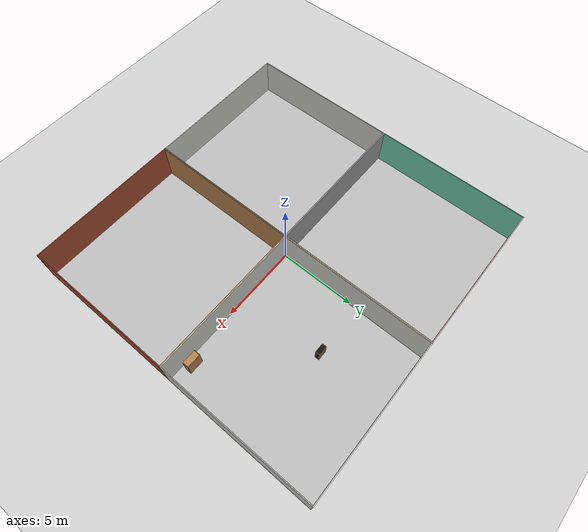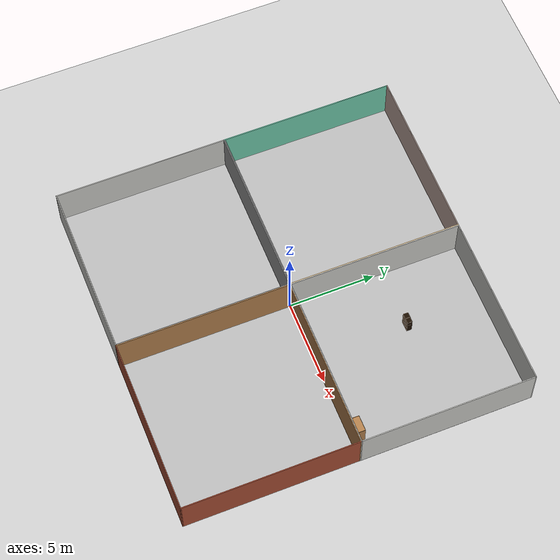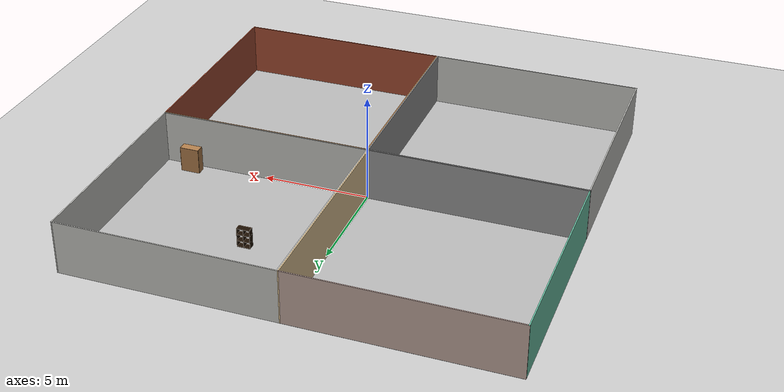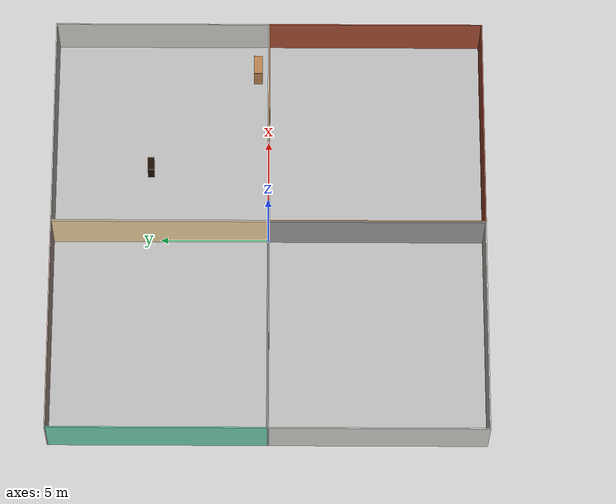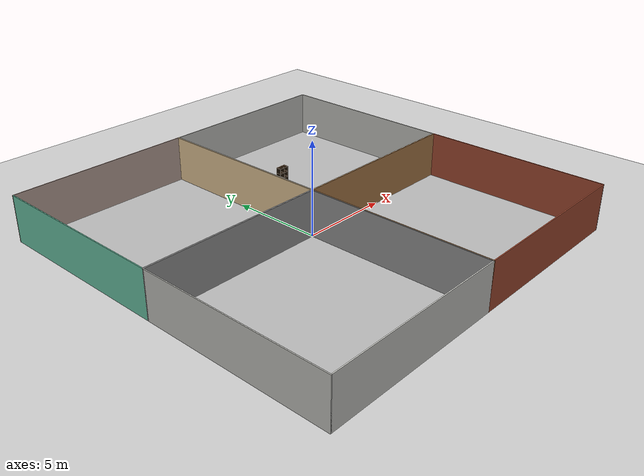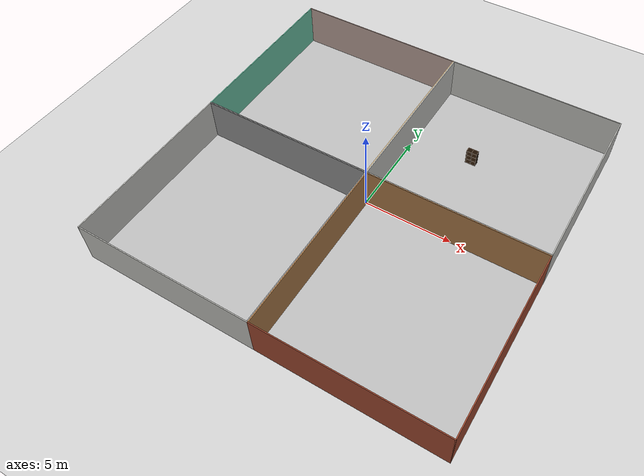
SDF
<sdf version="1.6">
 <world name="default">
  <light name="sun" type="directional">
   <pose>0 0 10 0 -0 0</pose>
   <diffuse>0.8 0.8 0.8 1</diffuse>
   <specular>0.1 0.1 0.1 1</specular>
   <attenuation>
    <range>1000</range>
    <constant>0.9</constant>
    <linear>0.01</linear>
    <quadratic>0.001</quadratic>
   </attenuation>
   <direction>-0.5 0.5 -1</direction>
  </light>
  <model name="ground_plane">
   <static>1</static>
   <link name="link">
    <collision name="collision">
     <geometry><plane><normal>0 0 1</normal><size>100 100</size></plane></geometry>
     <surface><friction><ode><mu>100</mu><mu2>50</mu2></ode></friction></surface>
    </collision>
    <visual name="visual">
     <cast_shadows>0</cast_shadows>
     <geometry><plane><normal>0 0 1</normal><size>100 100</size></plane></geometry>
     <material>
      <script><uri>file://media/materials/scripts/gazebo.material</uri><name>Gazebo/Grey</name></script>
     </material>
    </visual>
   </link>
  </model>
  <gravity>0 0 -9.8</gravity>
  <magnetic_field>6e-06 2.3e-05 -4.2e-05</magnetic_field>
  <atmosphere type="adiabatic"/>
  <physics name="default_physics" default="0" type="ode">
   <max_step_size>0.01</max_step_size>
   <real_time_factor>1</real_time_factor>
   <real_time_update_rate>100</real_time_update_rate>
  </physics>
  <scene><ambient>0.4 0.4 0.4 1</ambient><background>0.7 0.7 0.7 1</background><shadows>1</shadows></scene>
  <spherical_coordinates>
   <surface_model>EARTH_WGS84</surface_model>
   <latitude_deg>0</latitude_deg>
   <longitude_deg>0</longitude_deg>
   <elevation>0</elevation>
   <heading_deg>0</heading_deg>
  </spherical_coordinates>
  <model name="Floor_room1">
   <link name="main">
    <pose>0 0 0.01 0 -0 0</pose>
    <collision name="main_Collision">
     <geometry><box><size>10 10 0.001</size></box></geometry>
     <surface><friction><ode><mu>100</mu><mu2>100</mu2></ode></friction></surface>
    </collision>
    <visual name="main_Visual">
     <geometry><box><size>10 10 0.001</size></box></geometry>
     <material>
      <script>
       <uri>file:///home/linhai/.gazebo/models/Floor_room1/materials/scripts</uri>
       <uri>file:///home/linhai/.gazebo/models/Floor_room1/materials/textures</uri>
       <name>floor_room1</name>
      </script>
     </material>
    </visual>
   </link>
   <static>1</static>
   <pose>5.00733 -5.02178 -0.01 0 -0 0</pose>
  </model>
  <model name="Floor_room2">
   <link name="main">
    <pose>0 0 0.01 0 -0 0</pose>
    <collision name="main_Collision">
     <geometry><box><size>10 10 0.001</size></box></geometry>
     <surface><friction><ode><mu>100</mu><mu2>100</mu2></ode></friction></surface>
    </collision>
    <visual name="main_Visual">
     <geometry><box><size>10 10 0.001</size></box></geometry>
     <material>
      <script>
       <uri>file:///home/linhai/.gazebo/models/Floor_room2/materials/scripts</uri>
       <uri>file:///home/linhai/.gazebo/models/Floor_room2/materials/textures</uri>
       <name>floor_room2</name>
      </script>
     </material>
    </visual>
   </link>
   <static>1</static>
   <pose>-4.9783 5.02752 -0.01 0 -0 0</pose>
  </model>
  <model name="Floor_room3">
   <link name="main">
    <pose>0 0 0.01 0 -0 0</pose>
    <collision name="main_Collision">
     <geometry><box><size>10 10 0.001</size></box></geometry>
     <surface><friction><ode><mu>100</mu><mu2>100</mu2></ode></friction></surface>
    </collision>
    <visual name="main_Visual">
     <geometry><box><size>10 10 0.001</size></box></geometry>
     <material>
      <script>
       <uri>file:///home/linhai/.gazebo/models/Floor_room3/materials/scripts</uri>
       <uri>file:///home/linhai/.gazebo/models/Floor_room3/materials/textures</uri>
       <name>floor_room3</name>
      </script>
     </material>
    </visual>
   </link>
   <static>1</static>
   <pose>-5.00295 -4.97669 -0.01 0 -0 0</pose>
  </model>
  <model name="Floor_room4">
   <link name="main">
    <pose>0 0 0.01 0 -0 0</pose>
    <collision name="main_Collision">
     <geometry><box><size>10 10 0.001</size></box></geometry>
     <surface><friction><ode><mu>100</mu><mu2>100</mu2></ode></friction></surface>
    </collision>
    <visual name="main_Visual">
     <geometry><box><size>10 10 0.001</size></box></geometry>
     <material>
      <script>
       <uri>file:///home/linhai/.gazebo/models/Floor_room4/materials/scripts</uri>
       <uri>file:///home/linhai/.gazebo/models/Floor_room4/materials/textures</uri>
       <name>floor_room4</name>
      </script>
     </material>
    </visual>
   </link>
   <static>1</static>
   <pose>5.03079 5.00313 -0.01 0 -0 0</pose>
  </model>
  <model name="6_Cube_StorageE_0">
   <link name="Wall_0">
    <pose>0 0 0.01 0 -0 0</pose>
    <inertial>
     <mass>1.6201</mass>
     <inertia><ixx>0.0119</ixx><iyy>0.0631</iyy><izz>0.0513</izz><ixy>0</ixy><ixz>0</ixz><iyz>0</iyz></inertia>
    </inertial>
    <collision name="Wall_0_Collision"><geometry><box><size>0.616 0.296 0.02</size></box></geometry></collision>
    <visual name="Wall_0_Visual">
     <geometry><box><size>0.616 0.296 0.02</size></box></geometry>
     <material>
      <script><uri>file://media/materials/scripts/gazebo.material</uri><name>Gazebo/Grey</name></script>
      <ambient>0.105882 0.0509804 0 1</ambient>
     </material>
    </visual>
   </link>
   <joint name="0_2" type="fixed">
    <pose>-0.308 0 0 0 -0 0</pose>
    <parent>Wall_2</parent>
    <child>Wall_0</child>
    <axis>
     <xyz>1 0 0</xyz>
     <use_parent_model_frame>0</use_parent_model_frame>
     <limit><lower>-1e+16</lower><upper>1e+16</upper></limit>
    </axis>
   </joint>
   <joint name="0_12" type="fixed">
    <parent>Wall_12</parent>
    <child>Wall_0</child>
    <axis>
     <xyz>0 0 1</xyz>
     <use_parent_model_frame>0</use_parent_model_frame>
     <limit><lower>-1e+16</lower><upper>1e+16</upper></limit>
    </axis>
   </joint>
   <joint name="0_4" type="fixed">
    <pose>0.308 0 0 0 -0 0</pose>
    <parent>Wall_4</parent>
    <child>Wall_0</child>
    <axis>
     <xyz>1 0 0</xyz>
     <use_parent_model_frame>0</use_parent_model_frame>
     <limit><lower>-1e+16</lower><upper>1e+16</upper></limit>
    </axis>
   </joint>
   <link name="Wall_10">
    <pose>0 0 0.61 0 -0 0</pose>
    <inertial>
     <mass>1.6201</mass>
     <inertia><ixx>0.0119</ixx><iyy>0.0631</iyy><izz>0.0513</izz><ixy>0</ixy><ixz>0</ixz><iyz>0</iyz></inertia>
    </inertial>
    <collision name="Wall_10_Collision"><geometry><box><size>0.616 0.296 0.02</size></box></geometry></collision>
    <visual name="Wall_10_Visual">
     <geometry><box><size>0.616 0.296 0.02</size></box></geometry>
     <material>
      <script><uri>file://media/materials/scripts/gazebo.material</uri><name>Gazebo/Grey</name></script>
      <ambient>0.105882 0.0509804 0 1</ambient>
     </material>
    </visual>
   </link>
   <joint name="10_2" type="fixed">
    <pose>-0.308 0 0 0 -0 0</pose>
    <parent>Wall_2</parent>
    <child>Wall_10</child>
    <axis>
     <xyz>1 0 0</xyz>
     <use_parent_model_frame>0</use_parent_model_frame>
     <limit><lower>-1e+16</lower><upper>1e+16</upper></limit>
    </axis>
   </joint>
   <joint name="10_12" type="fixed">
    <parent>Wall_12</parent>
    <child>Wall_10</child>
    <axis>
     <xyz>0 0 1</xyz>
     <use_parent_model_frame>0</use_parent_model_frame>
     <limit><lower>-1e+16</lower><upper>1e+16</upper></limit>
    </axis>
   </joint>
   <joint name="10_4" type="fixed">
    <pose>0.308 0 0 0 -0 0</pose>
    <parent>Wall_4</parent>
    <child>Wall_10</child>
    <axis>
     <xyz>1 0 0</xyz>
     <use_parent_model_frame>0</use_parent_model_frame>
     <limit><lower>-1e+16</lower><upper>1e+16</upper></limit>
    </axis>
   </joint>
   <link name="Wall_12">
    <pose>0 0 0.4575 0 -0 0</pose>
    <inertial>
     <mass>2.4065</mass>
     <inertia><ixx>0.0177</ixx><iyy>0.1855</iyy><izz>0.168</izz><ixy>0</ixy><ixz>0</ixz><iyz>0</iyz></inertia>
    </inertial>
    <collision name="Wall_12_Collision"><geometry><box><size>0.02 0.296 0.915</size></box></geometry></collision>
    <visual name="Wall_12_Visual">
     <geometry><box><size>0.02 0.296 0.915</size></box></geometry>
     <material>
      <script><uri>file://media/materials/scripts/gazebo.material</uri><name>Gazebo/Grey</name></script>
      <ambient>0.105882 0.0509804 0 1</ambient>
     </material>
    </visual>
   </link>
   <link name="Wall_2">
    <pose>-0.298 0 0.4575 0 -0 0</pose>
    <inertial>
     <mass>2.4065</mass>
     <inertia><ixx>0.0177</ixx><iyy>0.1855</iyy><izz>0.168</izz><ixy>0</ixy><ixz>0</ixz><iyz>0</iyz></inertia>
    </inertial>
    <collision name="Wall_2_Collision"><geometry><box><size>0.02 0.296 0.915</size></box></geometry></collision>
    <visual name="Wall_2_Visual">
     <geometry><box><size>0.02 0.296 0.915</size></box></geometry>
     <material>
      <script><uri>file://media/materials/scripts/gazebo.material</uri><name>Gazebo/Grey</name></script>
      <ambient>0.105882 0.0509804 0 1</ambient>
     </material>
    </visual>
   </link>
   <link name="Wall_4">
    <pose>0.298 0 0.4575 0 -0 0</pose>
    <inertial>
     <mass>2.4065</mass>
     <inertia><ixx>0.0177</ixx><iyy>0.1855</iyy><izz>0.168</izz><ixy>0</ixy><ixz>0</ixz><iyz>0</iyz></inertia>
    </inertial>
    <collision name="Wall_4_Collision"><geometry><box><size>0.02 0.296 0.915</size></box></geometry></collision>
    <visual name="Wall_4_Visual">
     <geometry><box><size>0.02 0.296 0.915</size></box></geometry>
     <material>
      <script><uri>file://media/materials/scripts/gazebo.material</uri><name>Gazebo/Grey</name></script>
      <ambient>0.105882 0.0509804 0 1</ambient>
     </material>
    </visual>
   </link>
   <link name="Wall_6">
    <pose>0 0 0.905 0 -0 0</pose>
    <inertial>
     <mass>1.6201</mass>
     <inertia><ixx>0.0119</ixx><iyy>0.0631</iyy><izz>0.0513</izz><ixy>0</ixy><ixz>0</ixz><iyz>0</iyz></inertia>
    </inertial>
    <collision name="Wall_6_Collision"><geometry><box><size>0.616 0.296 0.02</size></box></geometry></collision>
    <visual name="Wall_6_Visual">
     <geometry><box><size>0.616 0.296 0.02</size></box></geometry>
     <material>
      <script><uri>file://media/materials/scripts/gazebo.material</uri><name>Gazebo/Grey</name></script>
      <ambient>0.105882 0.0509804 0 1</ambient>
     </material>
    </visual>
   </link>
   <joint name="6_2" type="fixed">
    <pose>-0.308 0 0 0 -0 0</pose>
    <parent>Wall_2</parent>
    <child>Wall_6</child>
    <axis>
     <xyz>2 0 0</xyz>
     <use_parent_model_frame>0</use_parent_model_frame>
     <limit><lower>-1e+16</lower><upper>1e+16</upper></limit>
    </axis>
   </joint>
   <joint name="6_12" type="fixed">
    <parent>Wall_12</parent>
    <child>Wall_6</child>
    <axis>
     <xyz>0 0 1</xyz>
     <use_parent_model_frame>0</use_parent_model_frame>
     <limit><lower>-1e+16</lower><upper>1e+16</upper></limit>
    </axis>
   </joint>
   <joint name="6_4" type="fixed">
    <pose>0.308 0 0 0 -0 0</pose>
    <parent>Wall_4</parent>
    <child>Wall_6</child>
    <axis>
     <xyz>1 0 0</xyz>
     <use_parent_model_frame>0</use_parent_model_frame>
     <limit><lower>-1e+16</lower><upper>1e+16</upper></limit>
    </axis>
   </joint>
   <link name="Wall_8">
    <pose>0 0 0.305 0 -0 0</pose>
    <inertial>
     <mass>1.6201</mass>
     <inertia><ixx>0.0119</ixx><iyy>0.0631</iyy><izz>0.0513</izz><ixy>0</ixy><ixz>0</ixz><iyz>0</iyz></inertia>
    </inertial>
    <collision name="Wall_8_Collision"><geometry><box><size>0.616 0.296 0.02</size></box></geometry></collision>
    <visual name="Wall_8_Visual">
     <geometry><box><size>0.616 0.296 0.02</size></box></geometry>
     <material>
      <script><uri>file://media/materials/scripts/gazebo.material</uri><name>Gazebo/Grey</name></script>
      <ambient>0.105882 0.0509804 0 1</ambient>
     </material>
    </visual>
   </link>
   <joint name="8_2" type="fixed">
    <pose>-0.308 0 0 0 -0 0</pose>
    <parent>Wall_2</parent>
    <child>Wall_8</child>
    <axis>
     <xyz>1 0 0</xyz>
     <use_parent_model_frame>0</use_parent_model_frame>
     <limit><lower>-1e+16</lower><upper>1e+16</upper></limit>
    </axis>
   </joint>
   <joint name="8_12" type="fixed">
    <parent>Wall_12</parent>
    <child>Wall_8</child>
    <axis>
     <xyz>0 0 1</xyz>
     <use_parent_model_frame>0</use_parent_model_frame>
     <limit><lower>-1e+16</lower><upper>1e+16</upper></limit>
    </axis>
   </joint>
   <joint name="8_4" type="fixed">
    <pose>0.308 0 0 0 -0 0</pose>
    <parent>Wall_4</parent>
    <child>Wall_8</child>
    <axis>
     <xyz>1 0 0</xyz>
     <use_parent_model_frame>0</use_parent_model_frame>
     <limit><lower>-1e+16</lower><upper>1e+16</upper></limit>
    </axis>
   </joint>
   <static>1</static>
   <pose>3.54149 5.51234 0 0 -0 0</pose>
  </model>
  <model name="bookshelf">
   <static>1</static>
   <link name="link">
    <inertial><mass>1</mass></inertial>
    <collision name="back">
     <pose>0 0.005 0.6 0 -0 0</pose>
     <geometry><box><size>0.9 0.01 1.2</size></box></geometry>
    </collision>
    <visual name="visual1">
     <pose>0 0.005 0.6 0 -0 0</pose>
     <geometry><box><size>0.9 0.01 1.2</size></box></geometry>
     <material>
      <script><uri>file://media/materials/scripts/gazebo.material</uri><name>Gazebo/Wood</name></script>
     </material>
    </visual>
    <collision name="left_side">
     <pose>0.45 -0.195 0.6 0 -0 0</pose>
     <geometry><box><size>0.02 0.4 1.2</size></box></geometry>
    </collision>
    <visual name="visual2">
     <pose>0.45 -0.195 0.6 0 -0 0</pose>
     <geometry><box><size>0.02 0.4 1.2</size></box></geometry>
     <material>
      <script><uri>file://media/materials/scripts/gazebo.material</uri><name>Gazebo/Wood</name></script>
     </material>
    </visual>
    <collision name="right_side">
     <pose>-0.45 -0.195 0.6 0 -0 0</pose>
     <geometry><box><size>0.02 0.4 1.2</size></box></geometry>
    </collision>
    <visual name="visual3">
     <pose>-0.45 -0.195 0.6 0 -0 0</pose>
     <geometry><box><size>0.02 0.4 1.2</size></box></geometry>
     <material>
      <script><uri>file://media/materials/scripts/gazebo.material</uri><name>Gazebo/Wood</name></script>
     </material>
    </visual>
    <collision name="bottom">
     <pose>0 -0.195 0.03 0 -0 0</pose>
     <geometry><box><size>0.88 0.4 0.06</size></box></geometry>
    </collision>
    <visual name="visual4">
     <pose>0 -0.195 0.03 0 -0 0</pose>
     <geometry><box><size>0.88 0.4 0.06</size></box></geometry>
     <material>
      <script><uri>file://media/materials/scripts/gazebo.material</uri><name>Gazebo/Wood</name></script>
     </material>
    </visual>
    <collision name="top">
     <pose>0 -0.195 1.19 0 -0 0</pose>
     <geometry><box><size>0.88 0.4 0.02</size></box></geometry>
    </collision>
    <visual name="visual5">
     <pose>0 -0.195 1.19 0 -0 0</pose>
     <geometry><box><size>0.88 0.4 0.02</size></box></geometry>
     <material>
      <script><uri>file://media/materials/scripts/gazebo.material</uri><name>Gazebo/Wood</name></script>
     </material>
    </visual>
    <collision name="low_shelf">
     <pose>0 -0.195 0.43 0 -0 0</pose>
     <geometry><box><size>0.88 0.4 0.02</size></box></geometry>
    </collision>
    <visual name="visual6">
     <pose>0 -0.195 0.43 0 -0 0</pose>
     <geometry><box><size>0.88 0.4 0.02</size></box></geometry>
     <material>
      <script><uri>file://media/materials/scripts/gazebo.material</uri><name>Gazebo/Wood</name></script>
     </material>
    </visual>
    <collision name="high_shelf">
     <pose>0 -0.195 0.8 0 -0 0</pose>
     <geometry><box><size>0.88 0.4 0.02</size></box></geometry>
    </collision>
    <visual name="visual7">
     <pose>0 -0.195 0.8 0 -0 0</pose>
     <geometry><box><size>0.88 0.4 0.02</size></box></geometry>
     <material>
      <script><uri>file://media/materials/scripts/gazebo.material</uri><name>Gazebo/Wood</name></script>
     </material>
    </visual>
   </link>
   <pose>8.5224 0.705137 0 0 -0 0</pose>
  </model>
  <model name="4_seperate_rooms_0">
   <pose>-3.1e-05 0 0 0 -0 0</pose>
   <link name="Wall_52">
    <collision name="Wall_52_Collision">
     <geometry><box><size>10.025 0.05 2.5</size></box></geometry>
     <pose>0 0 1.25 0 -0 0</pose>
    </collision>
    <visual name="Wall_52_Visual">
     <pose>0 0 1.25 0 -0 0</pose>
     <geometry><box><size>10.025 0.05 2.5</size></box></geometry>
     <material>
      <script><uri>file://media/materials/scripts/gazebo.material</uri><name>Gazebo/Grey</name></script>
      <ambient>0.435294 0.796078 0.67451 1</ambient>
     </material>
    </visual>
    <pose>-9.99997 5.0125 0 0 0 -1.5708</pose>
   </link>
   <link name="Wall_53">
    <collision name="Wall_53_Collision">
     <geometry><box><size>10.025 0.05 2.5</size></box></geometry>
     <pose>0 0 1.25 0 -0 0</pose>
    </collision>
    <visual name="Wall_53_Visual">
     <pose>0 0 1.25 0 -0 0</pose>
     <geometry><box><size>10.025 0.05 2.5</size></box></geometry>
     <material>
      <script><uri>file://media/materials/scripts/gazebo.material</uri><name>Gazebo/Grey</name></script>
      <ambient>1 1 1 1</ambient>
     </material>
    </visual>
    <pose>-5.01247 0.025 0 0 -0 0</pose>
   </link>
   <link name="Wall_54">
    <collision name="Wall_54_Collision">
     <geometry><box><size>10.025 0.05 2.5</size></box></geometry>
     <pose>0 0 1.25 0 -0 0</pose>
    </collision>
    <visual name="Wall_54_Visual">
     <pose>0 0 1.25 0 -0 0</pose>
     <geometry><box><size>10.025 0.05 2.5</size></box></geometry>
     <material>
      <script><uri>file://media/materials/scripts/gazebo.material</uri><name>Gazebo/Grey</name></script>
      <ambient>0.921569 0.807843 0.615686 1</ambient>
     </material>
    </visual>
    <pose>-0.024969 5.0125 0 0 -0 1.5708</pose>
   </link>
   <link name="Wall_55">
    <collision name="Wall_55_Collision">
     <geometry><box><size>10.025 0.05 2.5</size></box></geometry>
     <pose>0 0 1.25 0 -0 0</pose>
    </collision>
    <visual name="Wall_55_Visual">
     <pose>0 0 1.25 0 -0 0</pose>
     <geometry><box><size>10.025 0.05 2.5</size></box></geometry>
     <material>
      <script><uri>file://media/materials/scripts/gazebo.material</uri><name>Gazebo/Grey</name></script>
      <ambient>0.760784 0.662745 0.627451 1</ambient>
     </material>
    </visual>
    <pose>-5.01247 10 0 0 -0 3.14159</pose>
   </link>
   <link name="Wall_57">
    <collision name="Wall_57_Collision">
     <geometry><box><size>10.025 0.05 2.5</size></box></geometry>
     <pose>0 0 1.25 0 -0 0</pose>
    </collision>
    <visual name="Wall_57_Visual">
     <pose>0 0 1.25 0 -0 0</pose>
     <geometry><box><size>10.025 0.05 2.5</size></box></geometry>
     <material>
      <script><uri>file://media/materials/scripts/gazebo.material</uri><name>Gazebo/CeilingTiled</name></script>
      <ambient>1 0.764706 0.305882 1</ambient>
     </material>
    </visual>
    <pose>5.01253 10 0 0 -0 3.14159</pose>
   </link>
   <link name="Wall_58">
    <collision name="Wall_58_Collision">
     <geometry><box><size>10.025 0.05 2.5</size></box></geometry>
     <pose>0 0 1.25 0 -0 0</pose>
    </collision>
    <visual name="Wall_58_Visual">
     <pose>0 0 1.25 0 -0 0</pose>
     <geometry><box><size>10.025 0.05 2.5</size></box></geometry>
     <material>
      <script><uri>file://media/materials/scripts/gazebo.material</uri><name>Gazebo/CeilingTiled</name></script>
      <ambient>0.921569 0.807843 0.615686 1</ambient>
     </material>
    </visual>
    <pose>0.025031 5.0125 0 0 0 -1.5708</pose>
   </link>
   <link name="Wall_59">
    <collision name="Wall_59_Collision">
     <geometry><box><size>10.025 0.05 2.5</size></box></geometry>
     <pose>0 0 1.25 0 -0 0</pose>
    </collision>
    <visual name="Wall_59_Visual">
     <pose>0 0 1.25 0 -0 0</pose>
     <geometry><box><size>10.025 0.05 2.5</size></box></geometry>
     <material>
      <script><uri>file://media/materials/scripts/gazebo.material</uri><name>Gazebo/CeilingTiled</name></script>
      <ambient>0.435294 0.796078 0.67451 1</ambient>
     </material>
    </visual>
    <pose>5.01253 0.025 0 0 -0 0</pose>
   </link>
   <link name="Wall_60">
    <collision name="Wall_60_Collision">
     <geometry><box><size>10.025 0.05 2.5</size></box></geometry>
     <pose>0 0 1.25 0 -0 0</pose>
    </collision>
    <visual name="Wall_60_Visual">
     <pose>0 0 1.25 0 -0 0</pose>
     <geometry><box><size>10.025 0.05 2.5</size></box></geometry>
     <material>
      <script><uri>file://media/materials/scripts/gazebo.material</uri><name>Gazebo/CeilingTiled</name></script>
      <ambient>1 1 1 1</ambient>
     </material>
    </visual>
    <pose>10 5.0125 0 0 -0 1.5708</pose>
   </link>
   <link name="Wall_62">
    <collision name="Wall_62_Collision">
     <geometry><box><size>10.025 0.05 2.5</size></box></geometry>
     <pose>0 0 1.25 0 -0 0</pose>
    </collision>
    <visual name="Wall_62_Visual">
     <pose>0 0 1.25 0 -0 0</pose>
     <geometry><box><size>10.025 0.05 2.5</size></box></geometry>
     <material>
      <script><uri>file://media/materials/scripts/gazebo.material</uri><name>Gazebo/CeilingTiled</name></script>
      <ambient>1 0.764706 0.305882 1</ambient>
     </material>
    </visual>
    <pose>-9.99997 -5.0125 0 0 0 -1.5708</pose>
   </link>
   <link name="Wall_63">
    <collision name="Wall_63_Collision">
     <geometry><box><size>10.025 0.05 2.5</size></box></geometry>
     <pose>0 0 1.25 0 -0 0</pose>
    </collision>
    <visual name="Wall_63_Visual">
     <pose>0 0 1.25 0 -0 0</pose>
     <geometry><box><size>10.025 0.05 2.5</size></box></geometry>
     <material>
      <script><uri>file://media/materials/scripts/gazebo.material</uri><name>Gazebo/CeilingTiled</name></script>
      <ambient>1 1 1 1</ambient>
     </material>
    </visual>
    <pose>-5.01247 -10 0 0 -0 0</pose>
   </link>
   <link name="Wall_64">
    <collision name="Wall_64_Collision">
     <geometry><box><size>10.025 0.05 2.5</size></box></geometry>
     <pose>0 0 1.25 0 -0 0</pose>
    </collision>
    <visual name="Wall_64_Visual">
     <pose>0 0 1.25 0 -0 0</pose>
     <geometry><box><size>10.025 0.05 2.5</size></box></geometry>
     <material>
      <script><uri>file://media/materials/scripts/gazebo.material</uri><name>Gazebo/Grey</name></script>
      <ambient>1 1 1 1</ambient>
     </material>
    </visual>
    <pose>-0.024969 -5.0125 0 0 -0 1.5708</pose>
   </link>
   <link name="Wall_65">
    <collision name="Wall_65_Collision">
     <geometry><box><size>10.0251 0.05 2.5</size></box></geometry>
     <pose>0 0 1.25 0 -0 0</pose>
    </collision>
    <visual name="Wall_65_Visual">
     <pose>0 0 1.25 0 -0 0</pose>
     <geometry><box><size>10.0251 0.05 2.5</size></box></geometry>
     <material>
      <script><uri>file://media/materials/scripts/gazebo.material</uri><name>Gazebo/Grey</name></script>
      <ambient>1 1 1 1</ambient>
     </material>
    </visual>
    <pose>-5.01247 -0.025 0 0 -0 3.14159</pose>
   </link>
   <link name="Wall_67">
    <collision name="Wall_67_Collision">
     <geometry><box><size>10.025 0.05 2.5</size></box></geometry>
     <pose>0 0 1.25 0 -0 0</pose>
    </collision>
    <visual name="Wall_67_Visual">
     <pose>0 0 1.25 0 -0 0</pose>
     <geometry><box><size>10.025 0.05 2.5</size></box></geometry>
     <material>
      <script><uri>file://media/materials/scripts/gazebo.material</uri><name>Gazebo/Wood</name></script>
      <ambient>0.921569 0.807843 0.615686 1</ambient>
     </material>
    </visual>
    <pose>0.025031 -5.0125 0 0 0 -1.5708</pose>
   </link>
   <link name="Wall_68">
    <collision name="Wall_68_Collision">
     <geometry><box><size>10.025 0.05 2.5</size></box></geometry>
     <pose>0 0 1.25 0 -0 0</pose>
    </collision>
    <visual name="Wall_68_Visual">
     <pose>0 0 1.25 0 -0 0</pose>
     <geometry><box><size>10.025 0.05 2.5</size></box></geometry>
     <material>
      <script><uri>file://media/materials/scripts/gazebo.material</uri><name>Gazebo/Bricks</name></script>
      <ambient>1 1 1 1</ambient>
     </material>
    </visual>
    <pose>5.01253 -10 0 0 -0 0</pose>
   </link>
   <link name="Wall_69">
    <collision name="Wall_69_Collision">
     <geometry><box><size>10.025 0.05 2.5</size></box></geometry>
     <pose>0 0 1.25 0 -0 0</pose>
    </collision>
    <visual name="Wall_69_Visual">
     <pose>0 0 1.25 0 -0 0</pose>
     <geometry><box><size>10.025 0.05 2.5</size></box></geometry>
     <material>
      <script><uri>file://media/materials/scripts/gazebo.material</uri><name>Gazebo/Bricks</name></script>
      <ambient>1 1 1 1</ambient>
     </material>
    </visual>
    <pose>10 -5.0125 0 0 -0 1.5708</pose>
   </link>
   <link name="Wall_70">
    <collision name="Wall_70_Collision">
     <geometry><box><size>10.025 0.05 2.5</size></box></geometry>
     <pose>0 0 1.25 0 -0 0</pose>
    </collision>
    <visual name="Wall_70_Visual">
     <pose>0 0 1.25 0 -0 0</pose>
     <geometry><box><size>10.025 0.05 2.5</size></box></geometry>
     <material>
      <script><uri>file://media/materials/scripts/gazebo.material</uri><name>Gazebo/Wood</name></script>
      <ambient>1 1 1 1</ambient>
     </material>
    </visual>
    <pose>5.01253 -0.025 0 0 -0 3.14159</pose>
   </link>
   <static>1</static>
  </model>
 </world>
</sdf>
